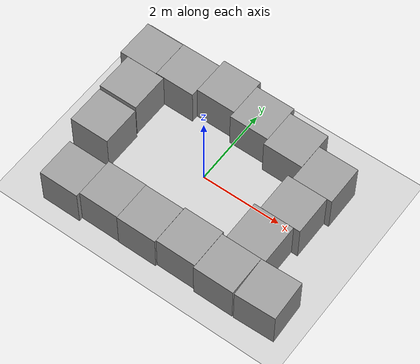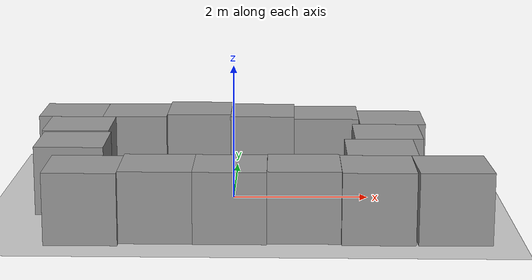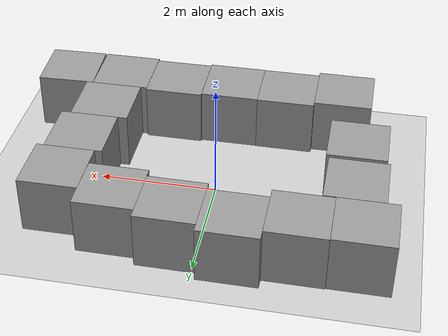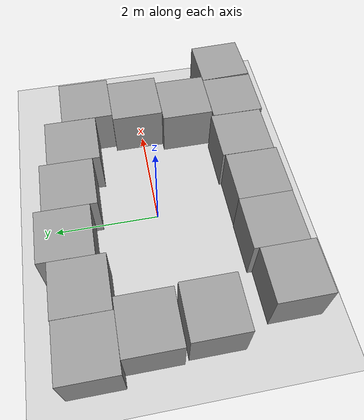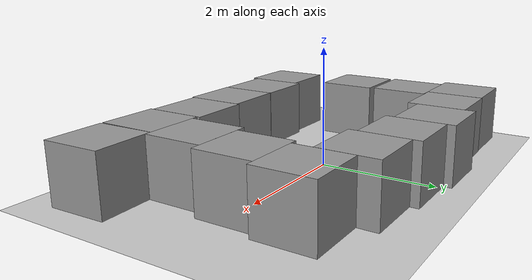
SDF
<sdf version="1.7">
 <world name="default">
  <light name="sun" type="directional">
   <pose>0 0 10 0 -0 0</pose>
   <diffuse>0.8 0.8 0.8 1</diffuse>
   <specular>0.2 0.2 0.2 1</specular>
   <attenuation>
    <range>1000</range>
    <constant>0.9</constant>
    <linear>0.01</linear>
    <quadratic>0.001</quadratic>
   </attenuation>
   <direction>-0.5 0.1 -0.9</direction>
   <spot><inner_angle>0</inner_angle><outer_angle>0</outer_angle><falloff>0</falloff></spot>
  </light>
  <model name="ground_plane">
   <static>1</static>
   <link name="link">
    <collision name="collision">
     <geometry><plane><normal>0 0 1</normal><size>100 100</size></plane></geometry>
     <surface>
      <contact><collide_bitmask>65535</collide_bitmask></contact>
      <friction><ode><mu>100</mu><mu2>50</mu2></ode></friction>
     </surface>
    </collision>
    <visual name="visual">
     <cast_shadows>0</cast_shadows>
     <geometry><plane><normal>0 0 1</normal><size>100 100</size></plane></geometry>
     <material>
      <script><uri>file://media/materials/scripts/gazebo.material</uri><name>Gazebo/Grey</name></script>
     </material>
    </visual>
   </link>
  </model>
  <gravity>0 0 -9.8</gravity>
  <magnetic_field>6e-06 2.3e-05 -4.2e-05</magnetic_field>
  <atmosphere type="adiabatic"/>
  <physics type="ode">
   <max_step_size>0.001</max_step_size>
   <real_time_factor>1</real_time_factor>
   <real_time_update_rate>1000</real_time_update_rate>
  </physics>
  <scene><ambient>0.4 0.4 0.4 1</ambient><background>0.7 0.7 0.7 1</background><shadows>1</shadows></scene>
  <spherical_coordinates>
   <surface_model>EARTH_WGS84</surface_model>
   <latitude_deg>0</latitude_deg>
   <longitude_deg>0</longitude_deg>
   <elevation>0</elevation>
   <heading_deg>0</heading_deg>
  </spherical_coordinates>
  <model name="unit_box">
   <pose>1.0195 -1.8642 0.499995 -1e-05 -0 -0.001118</pose>
   <link name="link">
    <inertial>
     <mass>1</mass>
     <inertia>
      <ixx>0.166667</ixx>
      <ixy>0</ixy>
      <ixz>0</ixz>
      <iyy>0.166667</iyy>
      <iyz>0</iyz>
      <izz>0.166667</izz>
     </inertia>
    </inertial>
    <collision name="collision"><geometry><box><size>1 1 1</size></box></geometry></collision>
    <visual name="visual">
     <geometry><box><size>1 1 1</size></box></geometry>
     <material>
      <script><name>Gazebo/Grey</name><uri>file://media/materials/scripts/gazebo.material</uri></script>
     </material>
    </visual>
   </link>
  </model>
  <model name="unit_box_0">
   <pose>0.018033 -1.90834 0.499995 1e-05 -0 0.001017</pose>
   <link name="link">
    <inertial>
     <mass>1</mass>
     <inertia>
      <ixx>0.166667</ixx>
      <ixy>0</ixy>
      <ixz>0</ixz>
      <iyy>0.166667</iyy>
      <iyz>0</iyz>
      <izz>0.166667</izz>
     </inertia>
    </inertial>
    <collision name="collision"><geometry><box><size>1 1 1</size></box></geometry></collision>
    <visual name="visual">
     <geometry><box><size>1 1 1</size></box></geometry>
     <material>
      <script><name>Gazebo/Grey</name><uri>file://media/materials/scripts/gazebo.material</uri></script>
     </material>
    </visual>
   </link>
  </model>
  <model name="unit_box_1">
   <pose>2.0214 -1.91536 0.499995 -1e-05 -0 0.000613</pose>
   <link name="link">
    <inertial>
     <mass>1</mass>
     <inertia>
      <ixx>0.166667</ixx>
      <ixy>0</ixy>
      <ixz>0</ixz>
      <iyy>0.166667</iyy>
      <iyz>0</iyz>
      <izz>0.166667</izz>
     </inertia>
    </inertial>
    <collision name="collision"><geometry><box><size>1 1 1</size></box></geometry></collision>
    <visual name="visual">
     <geometry><box><size>1 1 1</size></box></geometry>
     <material>
      <script><name>Gazebo/Grey</name><uri>file://media/materials/scripts/gazebo.material</uri></script>
     </material>
    </visual>
   </link>
  </model>
  <model name="unit_box_2">
   <pose>3.03796 -1.90247 0.499995 -0 1e-05 0.031325</pose>
   <link name="link">
    <inertial>
     <mass>1</mass>
     <inertia>
      <ixx>0.166667</ixx>
      <ixy>0</ixy>
      <ixz>0</ixz>
      <iyy>0.166667</iyy>
      <iyz>0</iyz>
      <izz>0.166667</izz>
     </inertia>
    </inertial>
    <collision name="collision"><geometry><box><size>1 1 1</size></box></geometry></collision>
    <visual name="visual">
     <geometry><box><size>1 1 1</size></box></geometry>
     <material>
      <script><name>Gazebo/Grey</name><uri>file://media/materials/scripts/gazebo.material</uri></script>
     </material>
    </visual>
   </link>
  </model>
  <model name="unit_box_3">
   <pose>-0.982002 -1.90282 0.499995 0 -1e-05 0.000988</pose>
   <link name="link">
    <inertial>
     <mass>1</mass>
     <inertia>
      <ixx>0.166667</ixx>
      <ixy>0</ixy>
      <ixz>0</ixz>
      <iyy>0.166667</iyy>
      <iyz>0</iyz>
      <izz>0.166667</izz>
     </inertia>
    </inertial>
    <collision name="collision"><geometry><box><size>1 1 1</size></box></geometry></collision>
    <visual name="visual">
     <geometry><box><size>1 1 1</size></box></geometry>
     <material>
      <script><name>Gazebo/Grey</name><uri>file://media/materials/scripts/gazebo.material</uri></script>
     </material>
    </visual>
   </link>
  </model>
  <model name="unit_box_4">
   <pose>-1.98191 -1.99999 0.499995 0 -1e-05 0.00098</pose>
   <link name="link">
    <inertial>
     <mass>1</mass>
     <inertia>
      <ixx>0.166667</ixx>
      <ixy>0</ixy>
      <ixz>0</ixz>
      <iyy>0.166667</iyy>
      <iyz>0</iyz>
      <izz>0.166667</izz>
     </inertia>
    </inertial>
    <collision name="collision"><geometry><box><size>1 1 1</size></box></geometry></collision>
    <visual name="visual">
     <geometry><box><size>1 1 1</size></box></geometry>
     <material>
      <script><name>Gazebo/Grey</name><uri>file://media/materials/scripts/gazebo.material</uri></script>
     </material>
    </visual>
   </link>
  </model>
  <model name="unit_box_5">
   <pose>2.1294 -0.915189 0.499995 0 1e-05 0.000334</pose>
   <link name="link">
    <inertial>
     <mass>1</mass>
     <inertia>
      <ixx>0.166667</ixx>
      <ixy>0</ixy>
      <ixz>0</ixz>
      <iyy>0.166667</iyy>
      <iyz>0</iyz>
      <izz>0.166667</izz>
     </inertia>
    </inertial>
    <collision name="collision"><geometry><box><size>1 1 1</size></box></geometry></collision>
    <visual name="visual">
     <geometry><box><size>1 1 1</size></box></geometry>
     <material>
      <script><name>Gazebo/Grey</name><uri>file://media/materials/scripts/gazebo.material</uri></script>
     </material>
    </visual>
   </link>
  </model>
  <model name="unit_box_6">
   <pose>2.28915 0.085036 0.499995 -0 1e-05 -0.000159</pose>
   <link name="link">
    <inertial>
     <mass>1</mass>
     <inertia>
      <ixx>0.166667</ixx>
      <ixy>0</ixy>
      <ixz>0</ixz>
      <iyy>0.166667</iyy>
      <iyz>0</iyz>
      <izz>0.166667</izz>
     </inertia>
    </inertial>
    <collision name="collision"><geometry><box><size>1 1 1</size></box></geometry></collision>
    <visual name="visual">
     <geometry><box><size>1 1 1</size></box></geometry>
     <material>
      <script><name>Gazebo/Grey</name><uri>file://media/materials/scripts/gazebo.material</uri></script>
     </material>
    </visual>
   </link>
  </model>
  <model name="unit_box_7">
   <pose>2.41147 1.08513 0.499995 -0 -1e-05 -0.000377</pose>
   <link name="link">
    <inertial>
     <mass>1</mass>
     <inertia>
      <ixx>0.166667</ixx>
      <ixy>0</ixy>
      <ixz>0</ixz>
      <iyy>0.166667</iyy>
      <iyz>0</iyz>
      <izz>0.166667</izz>
     </inertia>
    </inertial>
    <collision name="collision"><geometry><box><size>1 1 1</size></box></geometry></collision>
    <visual name="visual">
     <geometry><box><size>1 1 1</size></box></geometry>
     <material>
      <script><name>Gazebo/Grey</name><uri>file://media/materials/scripts/gazebo.material</uri></script>
     </material>
    </visual>
   </link>
  </model>
  <model name="unit_box_9">
   <pose>1.41093 1.42972 0.5 0 0 -0.004711</pose>
   <link name="link">
    <inertial>
     <mass>1</mass>
     <inertia>
      <ixx>0.166667</ixx>
      <ixy>0</ixy>
      <ixz>0</ixz>
      <iyy>0.166667</iyy>
      <iyz>0</iyz>
      <izz>0.166667</izz>
     </inertia>
    </inertial>
    <collision name="collision"><geometry><box><size>1 1 1</size></box></geometry></collision>
    <visual name="visual">
     <geometry><box><size>1 1 1</size></box></geometry>
     <material>
      <script><name>Gazebo/Grey</name><uri>file://media/materials/scripts/gazebo.material</uri></script>
     </material>
    </visual>
   </link>
  </model>
  <model name="unit_box_8">
   <pose>0.411608 1.58193 0.499995 1e-05 0 -0.004662</pose>
   <link name="link">
    <inertial>
     <mass>1</mass>
     <inertia>
      <ixx>0.166667</ixx>
      <ixy>0</ixy>
      <ixz>0</ixz>
      <iyy>0.166667</iyy>
      <iyz>0</iyz>
      <izz>0.166667</izz>
     </inertia>
    </inertial>
    <collision name="collision"><geometry><box><size>1 1 1</size></box></geometry></collision>
    <visual name="visual">
     <geometry><box><size>1 1 1</size></box></geometry>
     <material>
      <script><name>Gazebo/Grey</name><uri>file://media/materials/scripts/gazebo.material</uri></script>
     </material>
    </visual>
   </link>
  </model>
  <model name="unit_box_10">
   <pose>-0.587942 1.72476 0.499995 1e-05 0 -0.004256</pose>
   <link name="link">
    <inertial>
     <mass>1</mass>
     <inertia>
      <ixx>0.166667</ixx>
      <ixy>0</ixy>
      <ixz>0</ixz>
      <iyy>0.166667</iyy>
      <iyz>0</iyz>
      <izz>0.166667</izz>
     </inertia>
    </inertial>
    <collision name="collision"><geometry><box><size>1 1 1</size></box></geometry></collision>
    <visual name="visual">
     <geometry><box><size>1 1 1</size></box></geometry>
     <material>
      <script><name>Gazebo/Grey</name><uri>file://media/materials/scripts/gazebo.material</uri></script>
     </material>
    </visual>
   </link>
  </model>
  <model name="unit_box_11">
   <pose>-1.58879 1.55129 0.499995 0 -1e-05 -0.003975</pose>
   <link name="link">
    <inertial>
     <mass>1</mass>
     <inertia>
      <ixx>0.166667</ixx>
      <ixy>0</ixy>
      <ixz>0</ixz>
      <iyy>0.166667</iyy>
      <iyz>0</iyz>
      <izz>0.166667</izz>
     </inertia>
    </inertial>
    <collision name="collision"><geometry><box><size>1 1 1</size></box></geometry></collision>
    <visual name="visual">
     <geometry><box><size>1 1 1</size></box></geometry>
     <material>
      <script><name>Gazebo/Grey</name><uri>file://media/materials/scripts/gazebo.material</uri></script>
     </material>
    </visual>
   </link>
  </model>
  <model name="unit_box_12">
   <pose>-2.58947 1.54178 0.499995 -0 1e-05 -0.002648</pose>
   <link name="link">
    <inertial>
     <mass>1</mass>
     <inertia>
      <ixx>0.166667</ixx>
      <ixy>0</ixy>
      <ixz>0</ixz>
      <iyy>0.166667</iyy>
      <iyz>0</iyz>
      <izz>0.166667</izz>
     </inertia>
    </inertial>
    <collision name="collision"><geometry><box><size>1 1 1</size></box></geometry></collision>
    <visual name="visual">
     <geometry><box><size>1 1 1</size></box></geometry>
     <material>
      <script><name>Gazebo/Grey</name><uri>file://media/materials/scripts/gazebo.material</uri></script>
     </material>
    </visual>
   </link>
  </model>
  <model name="unit_box_13">
   <pose>-2.38034 0.541087 0.499995 -0 1e-05 -0.002174</pose>
   <link name="link">
    <inertial>
     <mass>1</mass>
     <inertia>
      <ixx>0.166667</ixx>
      <ixy>0</ixy>
      <ixz>0</ixz>
      <iyy>0.166667</iyy>
      <iyz>0</iyz>
      <izz>0.166667</izz>
     </inertia>
    </inertial>
    <collision name="collision"><geometry><box><size>1 1 1</size></box></geometry></collision>
    <visual name="visual">
     <geometry><box><size>1 1 1</size></box></geometry>
     <material>
      <script><name>Gazebo/Grey</name><uri>file://media/materials/scripts/gazebo.material</uri></script>
     </material>
    </visual>
   </link>
  </model>
  <model name="unit_box_14">
   <pose>-2.33224 -0.530328 0.5 0 -0 0</pose>
   <link name="link">
    <inertial>
     <mass>1</mass>
     <inertia>
      <ixx>0.166667</ixx>
      <ixy>0</ixy>
      <ixz>0</ixz>
      <iyy>0.166667</iyy>
      <iyz>0</iyz>
      <izz>0.166667</izz>
     </inertia>
    </inertial>
    <collision name="collision"><geometry><box><size>1 1 1</size></box></geometry></collision>
    <visual name="visual">
     <geometry><box><size>1 1 1</size></box></geometry>
     <material>
      <script><name>Gazebo/Grey</name><uri>file://media/materials/scripts/gazebo.material</uri></script>
     </material>
    </visual>
   </link>
  </model>
 </world>
</sdf>
